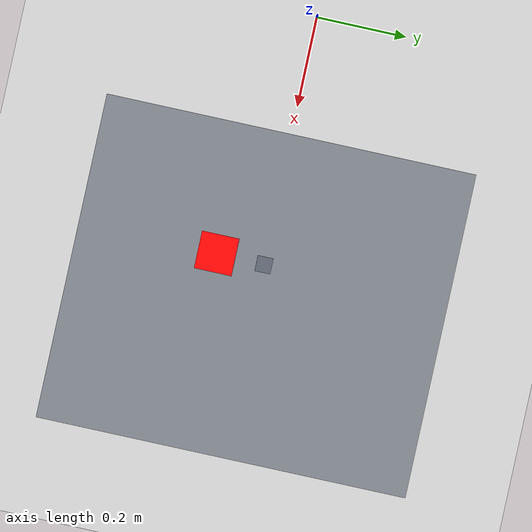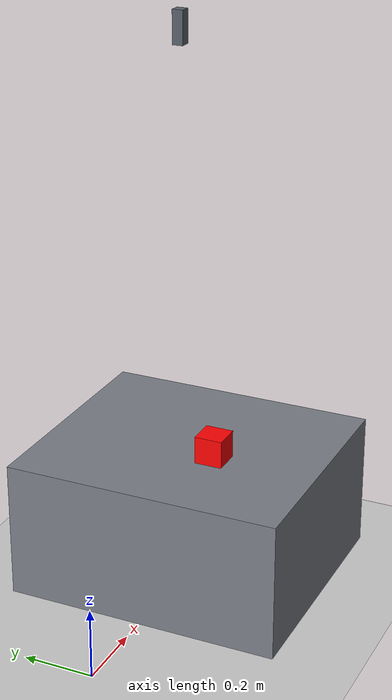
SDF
<?xml version="1.0"?>
<sdf version="1.6">
  <world name="eye_to_hand_visual_servo">
    <include><uri>model://ground_plane</uri></include>
    <include><uri>model://sun</uri></include>

    <!-- Scene-owned RGB-D camera: Gazebo +X is pitched toward the table. -->
    <model name="workspace_camera">
      <static>true</static>
      <pose>0.55 0 1.60 0 1.57079632679 0</pose>
      <link name="workspace_camera_link">
        <collision name="camera_body_collision"><geometry><box><size>0.09 0.03 0.03</size></box></geometry></collision>
        <visual name="camera_body_visual">
          <geometry><box><size>0.09 0.03 0.03</size></box></geometry>
          <material><ambient>0.20 0.22 0.25 1</ambient><diffuse>0.35 0.38 0.42 1</diffuse></material>
        </visual>
        <sensor type="depth" name="workspace_camera_rgbd">
          <pose>0.045 0 0 0 0 0</pose>
          <always_on>true</always_on><visualize>false</visualize><update_rate>20</update_rate>
          <camera name="workspace_camera_sensor">
            <horizontal_fov>1.0471975512</horizontal_fov>
            <image><width>640</width><height>480</height><format>R8G8B8</format></image>
            <clip><near>0.15</near><far>3.0</far></clip>
          </camera>
          <plugin name="workspace_camera_gazebo_ros_openni" filename="libgazebo_ros_openni_kinect.so">
            <cameraName>workspace_camera</cameraName>
            <imageTopicName>color/image_raw</imageTopicName>
            <cameraInfoTopicName>color/camera_info</cameraInfoTopicName>
            <depthImageTopicName>aligned_depth_to_color/image_raw</depthImageTopicName>
            <depthImageCameraInfoTopicName>aligned_depth_to_color/camera_info</depthImageCameraInfoTopicName>
            <pointCloudTopicName>depth/color/points</pointCloudTopicName>
            <frameName>workspace_camera_color_optical_frame</frameName>
            <pointCloudCutoff>0.15</pointCloudCutoff><pointCloudCutoffMax>3.0</pointCloudCutoffMax>
          </plugin>
        </sensor>
      </link>
    </model>

    <model name="workbench">
      <static>true</static><pose>0.62 0 0.20 0 0 0</pose>
      <link name="bench_link">
        <collision name="collision"><geometry><box><size>0.70 0.80 0.40</size></box></geometry></collision>
        <visual name="visual"><geometry><box><size>0.70 0.80 0.40</size></box></geometry>
          <material><ambient>0.34 0.36 0.39 1</ambient><diffuse>0.48 0.50 0.53 1</diffuse></material>
        </visual>
      </link>
    </model>

    <model name="red_visual_target">
      <static>true</static><pose>0.55 -0.10 0.44 0 0 0</pose>
      <link name="target_link">
        <collision name="collision"><geometry><box><size>0.08 0.08 0.08</size></box></geometry></collision>
        <visual name="visual"><geometry><box><size>0.08 0.08 0.08</size></box></geometry>
          <material><ambient>0.85 0.01 0.01 1</ambient><diffuse>1.00 0.01 0.01 1</diffuse></material>
        </visual>
      </link>
    </model>

    <physics name="eye_to_hand_visual_servo_physics" type="ode">
      <max_step_size>0.001</max_step_size><real_time_update_rate>1000</real_time_update_rate>
      <ode><solver><type>quick</type><iters>150</iters><sor>1.3</sor></solver></ode>
    </physics>
  </world>
</sdf>
